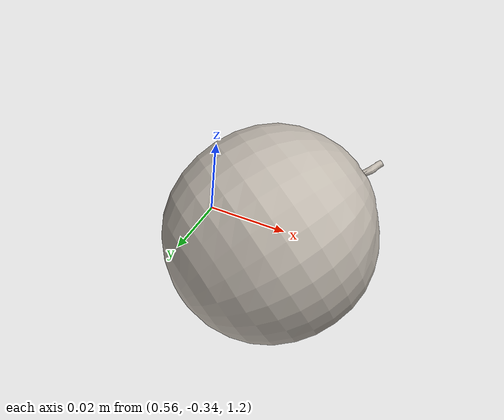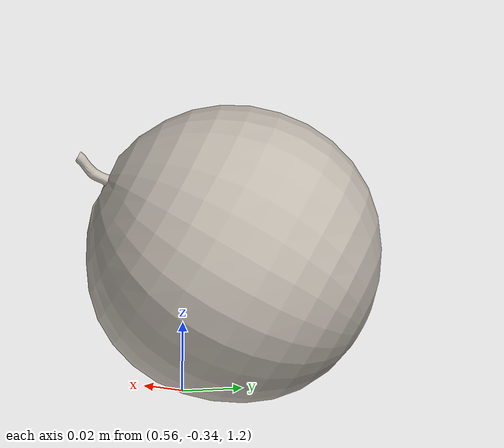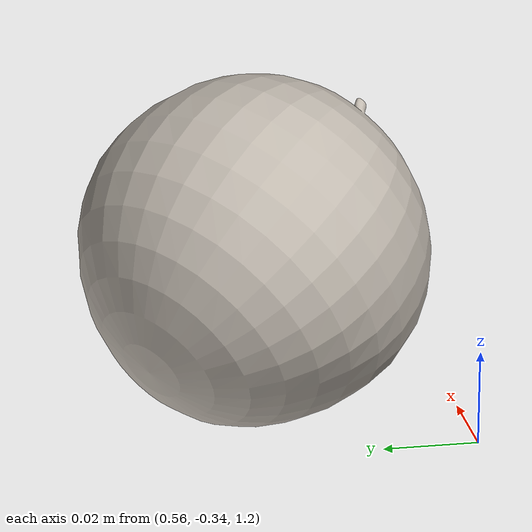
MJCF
<mujoco model="orange_10">
  <asset>
    <mesh file="../objects/bigym/orange_3/visual/model_normalized_0.obj" name= "orange_3_model_normalized_0_vis" scale="0.07499999999999997 0.07499999999999997 0.07499999999999997" refquat="0.7071067811865475 -0.7071067811865476 0.0 0.0"/>
    <mesh file="../objects/bigym/orange_3/collision/model_normalized_collision_22.obj" name= "orange_3_model_normalized_collision_22._coll" scale="0.07499999999999997 0.07499999999999997 0.07499999999999997" refquat="0.7071067811865475 -0.7071067811865476 0.0 0.0"/>
    <mesh file="../objects/bigym/orange_3/collision/model_normalized_collision_23.obj" name= "orange_3_model_normalized_collision_23._coll" scale="0.07499999999999997 0.07499999999999997 0.07499999999999997" refquat="0.7071067811865475 -0.7071067811865476 0.0 0.0"/>
    <mesh file="../objects/bigym/orange_3/collision/model_normalized_collision_21.obj" name= "orange_3_model_normalized_collision_21._coll" scale="0.07499999999999997 0.07499999999999997 0.07499999999999997" refquat="0.7071067811865475 -0.7071067811865476 0.0 0.0"/>
    <mesh file="../objects/bigym/orange_3/collision/model_normalized_collision_20.obj" name= "orange_3_model_normalized_collision_20._coll" scale="0.07499999999999997 0.07499999999999997 0.07499999999999997" refquat="0.7071067811865475 -0.7071067811865476 0.0 0.0"/>
    <mesh file="../objects/bigym/orange_3/collision/model_normalized_collision_24.obj" name= "orange_3_model_normalized_collision_24._coll" scale="0.07499999999999997 0.07499999999999997 0.07499999999999997" refquat="0.7071067811865475 -0.7071067811865476 0.0 0.0"/>
    <mesh file="../objects/bigym/orange_3/collision/model_normalized_collision_30.obj" name= "orange_3_model_normalized_collision_30._coll" scale="0.07499999999999997 0.07499999999999997 0.07499999999999997" refquat="0.7071067811865475 -0.7071067811865476 0.0 0.0"/>
    <mesh file="../objects/bigym/orange_3/collision/model_normalized_collision_18.obj" name= "orange_3_model_normalized_collision_18._coll" scale="0.07499999999999997 0.07499999999999997 0.07499999999999997" refquat="0.7071067811865475 -0.7071067811865476 0.0 0.0"/>
    <mesh file="../objects/bigym/orange_3/collision/model_normalized_collision_19.obj" name= "orange_3_model_normalized_collision_19._coll" scale="0.07499999999999997 0.07499999999999997 0.07499999999999997" refquat="0.7071067811865475 -0.7071067811865476 0.0 0.0"/>
    <mesh file="../objects/bigym/orange_3/collision/model_normalized_collision_31.obj" name= "orange_3_model_normalized_collision_31._coll" scale="0.07499999999999997 0.07499999999999997 0.07499999999999997" refquat="0.7071067811865475 -0.7071067811865476 0.0 0.0"/>
    <mesh file="../objects/bigym/orange_3/collision/model_normalized_collision_25.obj" name= "orange_3_model_normalized_collision_25._coll" scale="0.07499999999999997 0.07499999999999997 0.07499999999999997" refquat="0.7071067811865475 -0.7071067811865476 0.0 0.0"/>
    <mesh file="../objects/bigym/orange_3/collision/model_normalized_collision_27.obj" name= "orange_3_model_normalized_collision_27._coll" scale="0.07499999999999997 0.07499999999999997 0.07499999999999997" refquat="0.7071067811865475 -0.7071067811865476 0.0 0.0"/>
    <mesh file="../objects/bigym/orange_3/collision/model_normalized_collision_26.obj" name= "orange_3_model_normalized_collision_26._coll" scale="0.07499999999999997 0.07499999999999997 0.07499999999999997" refquat="0.7071067811865475 -0.7071067811865476 0.0 0.0"/>
    <mesh file="../objects/bigym/orange_3/collision/model_normalized_collision_9.obj" name= "orange_3_model_normalized_collision_9._coll" scale="0.07499999999999997 0.07499999999999997 0.07499999999999997" refquat="0.7071067811865475 -0.7071067811865476 0.0 0.0"/>
    <mesh file="../objects/bigym/orange_3/collision/model_normalized_collision_8.obj" name= "orange_3_model_normalized_collision_8._coll" scale="0.07499999999999997 0.07499999999999997 0.07499999999999997" refquat="0.7071067811865475 -0.7071067811865476 0.0 0.0"/>
    <mesh file="../objects/bigym/orange_3/collision/model_normalized_collision_6.obj" name= "orange_3_model_normalized_collision_6._coll" scale="0.07499999999999997 0.07499999999999997 0.07499999999999997" refquat="0.7071067811865475 -0.7071067811865476 0.0 0.0"/>
    <mesh file="../objects/bigym/orange_3/collision/model_normalized_collision_7.obj" name= "orange_3_model_normalized_collision_7._coll" scale="0.07499999999999997 0.07499999999999997 0.07499999999999997" refquat="0.7071067811865475 -0.7071067811865476 0.0 0.0"/>
    <mesh file="../objects/bigym/orange_3/collision/model_normalized_collision_5.obj" name= "orange_3_model_normalized_collision_5._coll" scale="0.07499999999999997 0.07499999999999997 0.07499999999999997" refquat="0.7071067811865475 -0.7071067811865476 0.0 0.0"/>
    <mesh file="../objects/bigym/orange_3/collision/model_normalized_collision_4.obj" name= "orange_3_model_normalized_collision_4._coll" scale="0.07499999999999997 0.07499999999999997 0.07499999999999997" refquat="0.7071067811865475 -0.7071067811865476 0.0 0.0"/>
    <mesh file="../objects/bigym/orange_3/collision/model_normalized_collision_0.obj" name= "orange_3_model_normalized_collision_0._coll" scale="0.07499999999999997 0.07499999999999997 0.07499999999999997" refquat="0.7071067811865475 -0.7071067811865476 0.0 0.0"/>
    <mesh file="../objects/bigym/orange_3/collision/model_normalized_collision_1.obj" name= "orange_3_model_normalized_collision_1._coll" scale="0.07499999999999997 0.07499999999999997 0.07499999999999997" refquat="0.7071067811865475 -0.7071067811865476 0.0 0.0"/>
    <mesh file="../objects/bigym/orange_3/collision/model_normalized_collision_3.obj" name= "orange_3_model_normalized_collision_3._coll" scale="0.07499999999999997 0.07499999999999997 0.07499999999999997" refquat="0.7071067811865475 -0.7071067811865476 0.0 0.0"/>
    <mesh file="../objects/bigym/orange_3/collision/model_normalized_collision_2.obj" name= "orange_3_model_normalized_collision_2._coll" scale="0.07499999999999997 0.07499999999999997 0.07499999999999997" refquat="0.7071067811865475 -0.7071067811865476 0.0 0.0"/>
    <mesh file="../objects/bigym/orange_3/collision/model_normalized_collision_17.obj" name= "orange_3_model_normalized_collision_17._coll" scale="0.07499999999999997 0.07499999999999997 0.07499999999999997" refquat="0.7071067811865475 -0.7071067811865476 0.0 0.0"/>
    <mesh file="../objects/bigym/orange_3/collision/model_normalized_collision_16.obj" name= "orange_3_model_normalized_collision_16._coll" scale="0.07499999999999997 0.07499999999999997 0.07499999999999997" refquat="0.7071067811865475 -0.7071067811865476 0.0 0.0"/>
    <mesh file="../objects/bigym/orange_3/collision/model_normalized_collision_28.obj" name= "orange_3_model_normalized_collision_28._coll" scale="0.07499999999999997 0.07499999999999997 0.07499999999999997" refquat="0.7071067811865475 -0.7071067811865476 0.0 0.0"/>
    <mesh file="../objects/bigym/orange_3/collision/model_normalized_collision_14.obj" name= "orange_3_model_normalized_collision_14._coll" scale="0.07499999999999997 0.07499999999999997 0.07499999999999997" refquat="0.7071067811865475 -0.7071067811865476 0.0 0.0"/>
    <mesh file="../objects/bigym/orange_3/collision/model_normalized_collision_15.obj" name= "orange_3_model_normalized_collision_15._coll" scale="0.07499999999999997 0.07499999999999997 0.07499999999999997" refquat="0.7071067811865475 -0.7071067811865476 0.0 0.0"/>
    <mesh file="../objects/bigym/orange_3/collision/model_normalized_collision_29.obj" name= "orange_3_model_normalized_collision_29._coll" scale="0.07499999999999997 0.07499999999999997 0.07499999999999997" refquat="0.7071067811865475 -0.7071067811865476 0.0 0.0"/>
    <mesh file="../objects/bigym/orange_3/collision/model_normalized_collision_11.obj" name= "orange_3_model_normalized_collision_11._coll" scale="0.07499999999999997 0.07499999999999997 0.07499999999999997" refquat="0.7071067811865475 -0.7071067811865476 0.0 0.0"/>
    <mesh file="../objects/bigym/orange_3/collision/model_normalized_collision_10.obj" name= "orange_3_model_normalized_collision_10._coll" scale="0.07499999999999997 0.07499999999999997 0.07499999999999997" refquat="0.7071067811865475 -0.7071067811865476 0.0 0.0"/>
    <mesh file="../objects/bigym/orange_3/collision/model_normalized_collision_12.obj" name= "orange_3_model_normalized_collision_12._coll" scale="0.07499999999999997 0.07499999999999997 0.07499999999999997" refquat="0.7071067811865475 -0.7071067811865476 0.0 0.0"/>
    <mesh file="../objects/bigym/orange_3/collision/model_normalized_collision_13.obj" name= "orange_3_model_normalized_collision_13._coll" scale="0.07499999999999997 0.07499999999999997 0.07499999999999997" refquat="0.7071067811865475 -0.7071067811865476 0.0 0.0"/>
    <texture type="2d" name="orange_3_image0" file="../objects/bigym/orange_3/visual/image0.png"/>
    <material name="Material.256" texture="orange_3_image0" specular="0.5" shininess="0.359999993"/>
  </asset>

  <default class="main">
    <default class="orange_3">
      <default class="orange_3_visual">
        <geom type="mesh" contype="0" conaffinity="0" group="2"/>
      </default>
      <default class="orange_3_collision">
        <geom type="mesh" group="3" solref="0.004" solimp="0.95 0.98" condim="6"/>
      </default>
    </default>
  </default>

  <worldbody>
      <body name="orange_3_object" pos="0.6 -0.3 1.23" >
        <freejoint/>
        <geom class="orange_3_visual" mesh= "orange_3_model_normalized_0_vis" material="Material.256"/>
        <geom class="orange_3_collision" mesh= "orange_3_model_normalized_collision_22._coll" rgba="0.8 0.8 0.8 0.0"/>
        <geom class="orange_3_collision" mesh= "orange_3_model_normalized_collision_23._coll" rgba="0.8 0.8 0.8 0.0"/>
        <geom class="orange_3_collision" mesh= "orange_3_model_normalized_collision_21._coll" rgba="0.8 0.8 0.8 0.0"/>
        <geom class="orange_3_collision" mesh= "orange_3_model_normalized_collision_20._coll" rgba="0.8 0.8 0.8 0.0"/>
        <geom class="orange_3_collision" mesh= "orange_3_model_normalized_collision_24._coll" rgba="0.8 0.8 0.8 0.0"/>
        <geom class="orange_3_collision" mesh= "orange_3_model_normalized_collision_30._coll" rgba="0.8 0.8 0.8 0.0"/>
        <geom class="orange_3_collision" mesh= "orange_3_model_normalized_collision_18._coll" rgba="0.8 0.8 0.8 0.0"/>
        <geom class="orange_3_collision" mesh= "orange_3_model_normalized_collision_19._coll" rgba="0.8 0.8 0.8 0.0"/>
        <geom class="orange_3_collision" mesh= "orange_3_model_normalized_collision_31._coll" rgba="0.8 0.8 0.8 0.0"/>
        <geom class="orange_3_collision" mesh= "orange_3_model_normalized_collision_25._coll" rgba="0.8 0.8 0.8 0.0"/>
        <geom class="orange_3_collision" mesh= "orange_3_model_normalized_collision_27._coll" rgba="0.8 0.8 0.8 0.0"/>
        <geom class="orange_3_collision" mesh= "orange_3_model_normalized_collision_26._coll" rgba="0.8 0.8 0.8 0.0"/>
        <geom class="orange_3_collision" mesh= "orange_3_model_normalized_collision_9._coll" rgba="0.8 0.8 0.8 0.0"/>
        <geom class="orange_3_collision" mesh= "orange_3_model_normalized_collision_8._coll" rgba="0.8 0.8 0.8 0.0"/>
        <geom class="orange_3_collision" mesh= "orange_3_model_normalized_collision_6._coll" rgba="0.8 0.8 0.8 0.0"/>
        <geom class="orange_3_collision" mesh= "orange_3_model_normalized_collision_7._coll" rgba="0.8 0.8 0.8 0.0"/>
        <geom class="orange_3_collision" mesh= "orange_3_model_normalized_collision_5._coll" rgba="0.8 0.8 0.8 0.0"/>
        <geom class="orange_3_collision" mesh= "orange_3_model_normalized_collision_4._coll" rgba="0.8 0.8 0.8 0.0"/>
        <geom class="orange_3_collision" mesh= "orange_3_model_normalized_collision_0._coll" rgba="0.8 0.8 0.8 0.0"/>
        <geom class="orange_3_collision" mesh= "orange_3_model_normalized_collision_1._coll" rgba="0.8 0.8 0.8 0.0"/>
        <geom class="orange_3_collision" mesh= "orange_3_model_normalized_collision_3._coll" rgba="0.8 0.8 0.8 0.0"/>
        <geom class="orange_3_collision" mesh= "orange_3_model_normalized_collision_2._coll" rgba="0.8 0.8 0.8 0.0"/>
        <geom class="orange_3_collision" mesh= "orange_3_model_normalized_collision_17._coll" rgba="0.8 0.8 0.8 0.0"/>
        <geom class="orange_3_collision" mesh= "orange_3_model_normalized_collision_16._coll" rgba="0.8 0.8 0.8 0.0"/>
        <geom class="orange_3_collision" mesh= "orange_3_model_normalized_collision_28._coll" rgba="0.8 0.8 0.8 0.0"/>
        <geom class="orange_3_collision" mesh= "orange_3_model_normalized_collision_14._coll" rgba="0.8 0.8 0.8 0.0"/>
        <geom class="orange_3_collision" mesh= "orange_3_model_normalized_collision_15._coll" rgba="0.8 0.8 0.8 0.0"/>
        <geom class="orange_3_collision" mesh= "orange_3_model_normalized_collision_29._coll" rgba="0.8 0.8 0.8 0.0"/>
        <geom class="orange_3_collision" mesh= "orange_3_model_normalized_collision_11._coll" rgba="0.8 0.8 0.8 0.0"/>
        <geom class="orange_3_collision" mesh= "orange_3_model_normalized_collision_10._coll" rgba="0.8 0.8 0.8 0.0"/>
        <geom class="orange_3_collision" mesh= "orange_3_model_normalized_collision_12._coll" rgba="0.8 0.8 0.8 0.0"/>
        <geom class="orange_3_collision" mesh= "orange_3_model_normalized_collision_13._coll" rgba="0.8 0.8 0.8 0.0"/>
      </body>
  </worldbody>
</mujoco>
